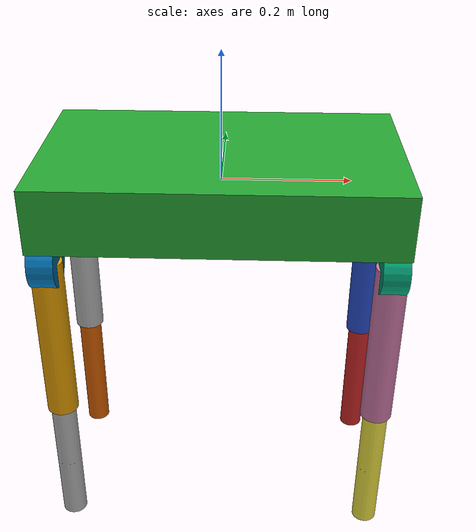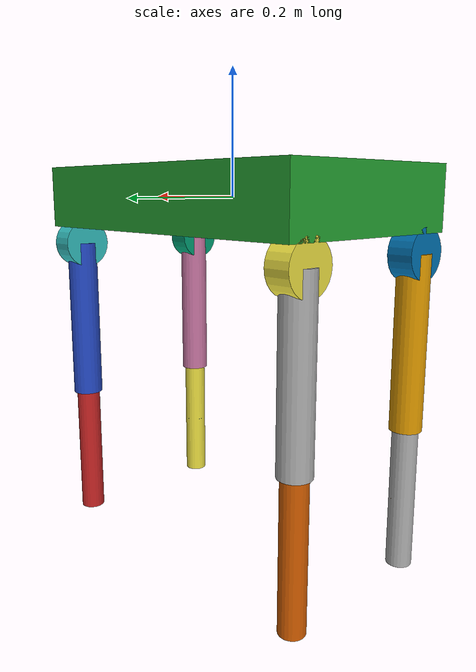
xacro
<?xml version="1.0"?>

<robot xmlns:xacro="http://www.ros.org/wiki/xacro" name="dinasour">

<xacro:include filename="$(find qr_description)/urdf/dinasour.urdf.xacro"/>
<xacro:include filename="$(find qr_description)/urdf/dinasour.transmission.xacro"/>
<xacro:include filename="$(find qr_description)/urdf/dinasour.gazebo.xacro"/>

</robot>

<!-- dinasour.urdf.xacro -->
<robot xmlns:xacro="http://www.ros.org/wiki/xacro" name="dinasour">

	<!--*********************  MACRO CONSTS  ************************-->
	<xacro:property name="Damping"       value="0" />
	<xacro:property name="Friction"      value="0.1" />
	<xacro:property name="PI"            value="3.141592698" />
	<xacro:property name="Effort_Limit"  value="50" />
	<xacro:property name="Velocity_Limit" value="1" />

	<xacro:property name="BODY_X"        value="0.553" />
	<xacro:property name="BODY_Y"        value="0.336" />
	<xacro:property name="BODY_Z"        value="0.1" />
	<xacro:property name="SHOD_R"        value="0.04" />
	<xacro:property name="SHOD_L"        value="0.04" />
	<xacro:property name="LEG_R"        value="0.025" />
	<xacro:property name="LEG_L"        value="0.273" />
	<xacro:property name="SHE_R"        value="0.02" />
	<xacro:property name="SHE_L"        value="0.225" />

	<!--*********************  MACRO TEMPLATES  ***********************-->
	<!-- Body MACRO -->
	<xacro:macro name="Body" params="Name Mass">
		<link name="${Name}">
			<origin xyz="0 0 0" rpy="0 0 0"/>
			<visual>
				<origin xyz="0 0 0" rpy="0 0 0"/>
				<geometry>
					<box size="${BODY_X} ${BODY_Y} ${BODY_Z}"/>
				</geometry>
			</visual>
			<collision>
				<origin xyz="0 0 0" rpy="0 0 0"/>
				<geometry>
					<box size="${BODY_X} ${BODY_Y} ${BODY_Z}"/>
				</geometry>
			</collision>
			<inertial>
				<origin xyz="0 0 0" rpy="0 0 0"/>
				<mass value="${Mass}"/>
				<inertia ixx="${1/12*Mass*(BODY_Y*BODY_Y+BODY_Z*BODY_Z)}" ixy="0" ixz="0" iyy="${1/12*Mass*(BODY_X*BODY_X+BODY_Z*BODY_Z)}" iyz="0" izz="${1/12*Mass*(BODY_Y*BODY_Y+BODY_X*BODY_X)}"/>
			</inertial>
		</link>
	</xacro:macro>

	<!-- Shoulder MACRO -->
	<xacro:macro name="Shoulder" params="Name Mass Parent_Link X_Dir Y_Dir">
		<link name="${Name}_shoulder">
			<visual>
				<origin xyz="0 0 0" rpy="0 ${PI/2} 0"/>
				<geometry>
					<cylinder radius="${SHOD_R}" length="${SHOD_L}"/>
				</geometry>
			</visual>
			<collision>
				<origin xyz="0 0 0" rpy="0 ${PI/2} 0"/>
				<geometry>
					<cylinder radius="${SHOD_R}" length="${SHOD_L}"/>
				</geometry>
			</collision>
			<inertial>
				<origin xyz="0 0 0" rpy="0 ${PI/2} 0"/>
				<mass value="${Mass}"/>
				<inertia ixx="${1/12*Mass*(3*SHOD_R*SHOD_R+SHOD_L*SHOD_L)}" ixy="0" ixz="0" iyy="${1/12*Mass*(3*SHOD_R*SHOD_R+SHOD_L*SHOD_L)}" iyz="0" izz="${1/2*Mass*SHOD_R*SHOD_R}"/>
			</inertial>
		</link>
		<joint name="${Name}_yaw" type="revolute">
			<origin xyz="${X_Dir*(BODY_X/2-SHOD_L/2)} ${Y_Dir*(BODY_Y/2-SHOD_R)} ${-SHOD_R*2}" rpy="0 0 0"/>
			<parent link="${Parent_Link}"/>
			<child link="${Name}_shoulder"/>
			<axis xyz="1 0 0"/>
			<dynamics damping="${Damping}" friction="${Friction}"/>
			<limit lower="-1" upper="1" effort="${Effort_Limit}" velocity="${Velocity_Limit}"/>
		</joint>
	</xacro:macro>

	<!-- LEG MACRO -->
	<xacro:macro name="LEG" params="Name Mass Limit_Up Limit_Low">
		<link name="${Name}_leg">
			<visual>
				<origin xyz="0 0 ${-LEG_L/2}" rpy="0 0 0"/>
				<geometry>
					<cylinder radius="${LEG_R}" length="${LEG_L}"/>
				</geometry>
			</visual>
			<collision>
				<origin xyz="0 0 ${-LEG_L/2}" rpy="0 0 0"/>
				<geometry>
					<cylinder radius="${LEG_R}" length="${LEG_L/2}"/>
				</geometry>
			</collision>
			<inertial>
				<origin xyz="0 0 ${-LEG_L/2}" rpy="0 0 0"/>
				<mass value="${Mass}"/>
				<inertia ixx="${1/12*Mass*(3*LEG_R*LEG_R+LEG_L*LEG_L)}" ixy="0" ixz="0" iyy="${1/12*Mass*(3*LEG_R*LEG_R+LEG_L*LEG_L)}" iyz="0" izz="${1/2*Mass*LEG_R*LEG_R}"/>
			</inertial>
		</link>
		<joint name="${Name}_hip" type="revolute">
			<origin xyz="0 0 0" rpy="0 0 0"/>
			<parent link="${Name}_shoulder"/>
			<child link="${Name}_leg"/>
			<axis xyz="0 1 0"/>
			<dynamics damping="${Damping}" friction="${Friction}"/>
			<limit lower="${Limit_Low}" upper="${Limit_Up}" effort="${Effort_Limit}" velocity="${Velocity_Limit}"/>
		</joint>
	</xacro:macro>

	<!-- SHINE MACRO -->
	<xacro:macro name="SHINE" params="Name Mass Limit_Up Limit_Low">
		<link name="${Name}_shine">
			<visual>
				<origin xyz="0 0 ${-SHE_L/2}" rpy="0 0 0"/>
				<geometry>
					<cylinder radius="${SHE_R}" length="${SHE_L}"/>
				</geometry>
			</visual>
			<collision>
				<origin xyz="0 0 ${-SHE_L/2}" rpy="0 0 0"/>
				<geometry>
					<cylinder radius="${SHE_R}" length="${SHE_L}"/>
				</geometry>
			</collision>
			<inertial>
				<origin xyz="0 0 ${-SHE_L/2}" rpy="0 0 0"/>
				<mass value="${Mass}"/>
				<inertia ixx="${1/12*Mass*(3*SHE_R*SHE_R+SHE_L*SHE_L)}" ixy="0" ixz="0" iyy="${1/12*Mass*(3*SHE_R*SHE_R+SHE_L*SHE_L)}" iyz="0" izz="${1/2*Mass*SHE_R*SHE_R}"/>
			</inertial>
		</link>
		<joint name="${Name}_knee" type="revolute">
			<origin xyz="0 0 ${-LEG_L}" rpy="0 0 0"/>
			<parent link="${Name}_leg"/>
			<child link="${Name}_shine"/>
			<axis xyz="0 1 0"/>
			<dynamics damping="${Damping}" friction="${Friction}"/>
			<limit lower="${Limit_Low}" upper="${ Limit_Up}" effort="${Effort_Limit}" velocity="${Velocity_Limit}"/>
		</joint>
		<link name="${Name}_foot">
			<visual>
				<origin xyz="0 0 ${-SHE_L/2}" rpy="0 0 0"/>
				<geometry>
					<cylinder radius="${SHE_R}" length="0.0001"/>
				</geometry>
			</visual>
			<collision>
				<origin xyz="0 0 ${-SHE_L/2}" rpy="0 0 0"/>
				<geometry>
					<cylinder radius="${SHE_R}" length="0.0001"/>
				</geometry>
			</collision>
		</link>
		<joint name="${Name}_foot_fixed" type="fixed">
			<parent link="${Name}_shine"/>
			<child link="${Name}_foot"/>
		</joint>
	</xacro:macro>
	<!--********  LINKS and JOINTS defined by MACRO TEMPLATES  ********-->
	<xacro:Body Name="body" Mass="10"/>
	<xacro:Shoulder Name="left_front"   Mass="1" Parent_Link="body" X_Dir = "1"  Y_Dir = "1"/>
 <xacro:Shoulder Name="right_front"  Mass="1" Parent_Link="body" X_Dir = "1"  Y_Dir = "-1"/>
 <xacro:Shoulder Name="left_back"    Mass="1" Parent_Link="body" X_Dir = "-1"  Y_Dir = "1"/>
 <xacro:Shoulder Name="right_back"   Mass="1" Parent_Link="body" X_Dir = "-1"  Y_Dir = "-1"/>

	<xacro:LEG Name="left_front"    Mass="1" Limit_Up = "2" Limit_Low="-2"/>
	<xacro:LEG Name="right_front"   Mass="1" Limit_Up = "2" Limit_Low="-2"/>
	<xacro:LEG Name="left_back"     Mass="1" Limit_Up = "2" Limit_Low="-2"/>
	<xacro:LEG Name="right_back"    Mass="1" Limit_Up = "2" Limit_Low="-2"/>

	<xacro:SHINE Name="left_front"  Mass="1" Limit_Up = "2" Limit_Low="-2" />
	<xacro:SHINE Name="right_front" Mass="1" Limit_Up = "2" Limit_Low="-2" />
	<xacro:SHINE Name="left_back"   Mass="1" Limit_Up = "2" Limit_Low="-2" />
	<xacro:SHINE Name="right_back"  Mass="1" Limit_Up = "2" Limit_Low="-2" />

</robot>
